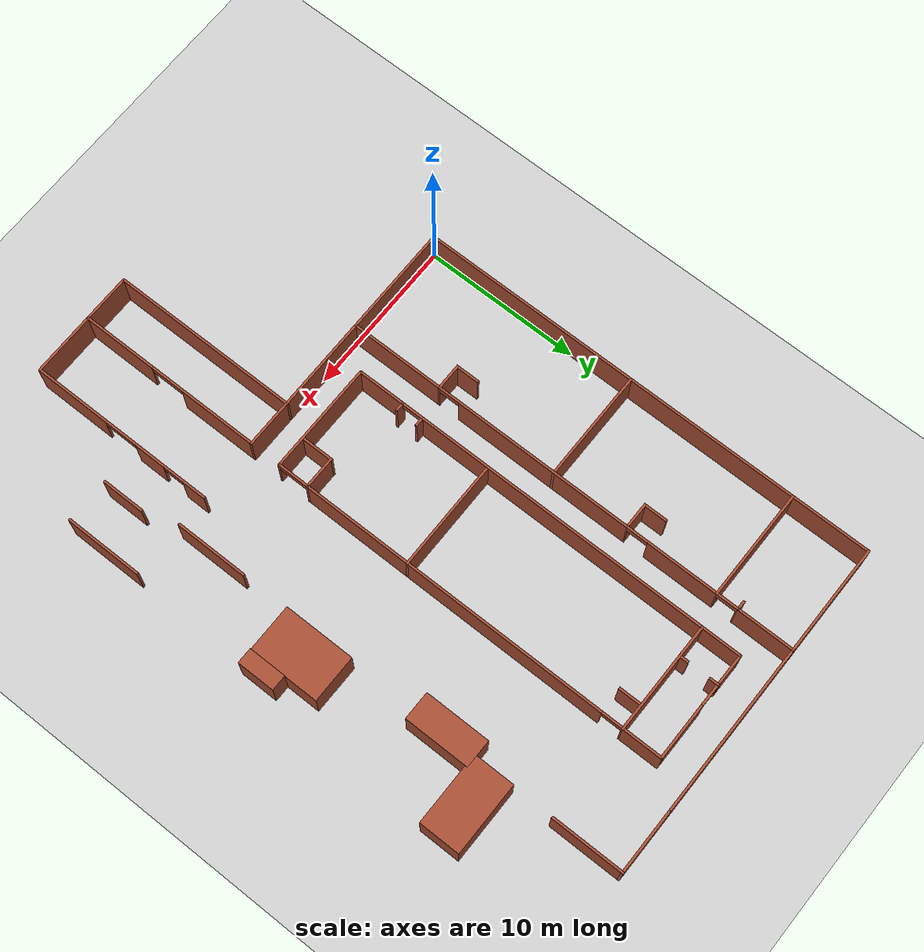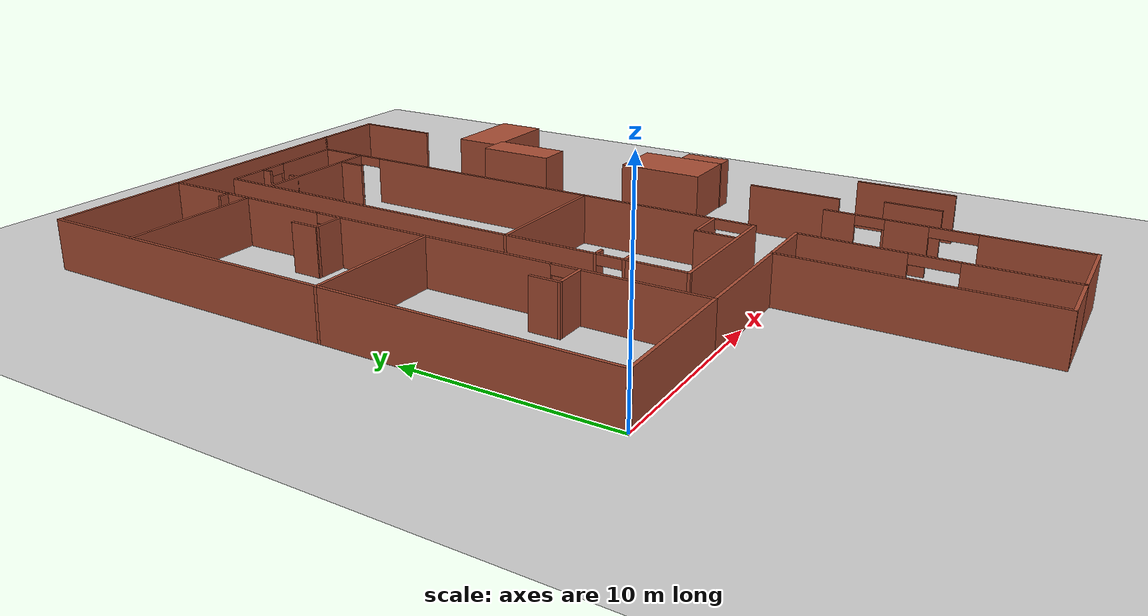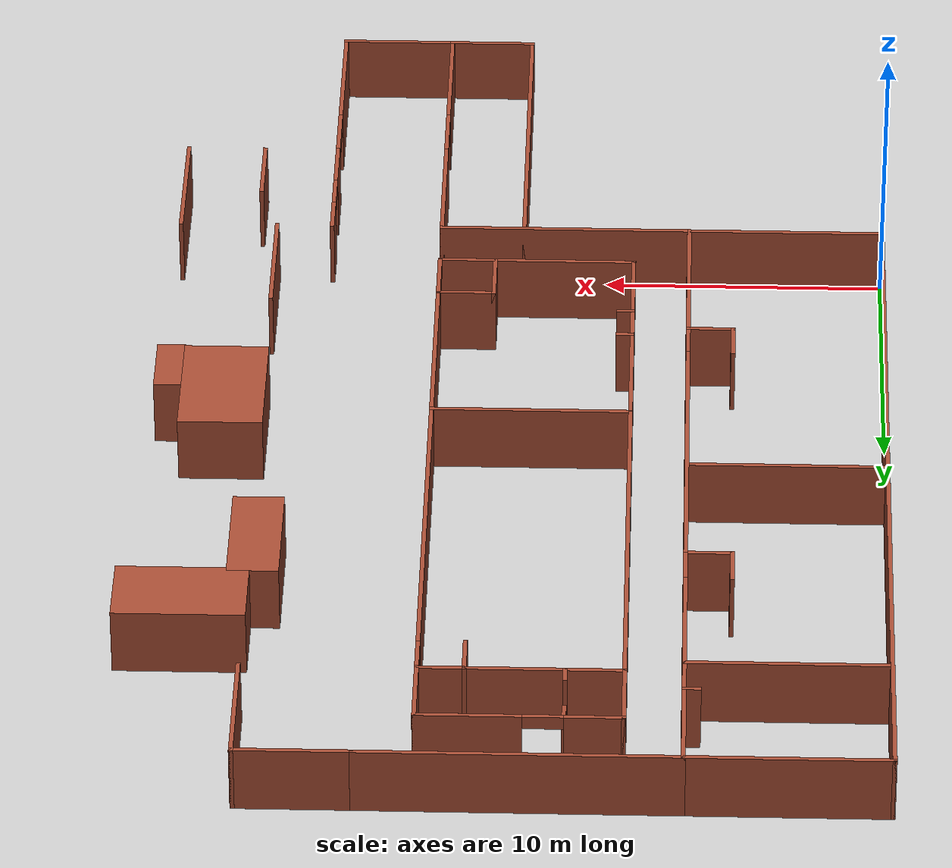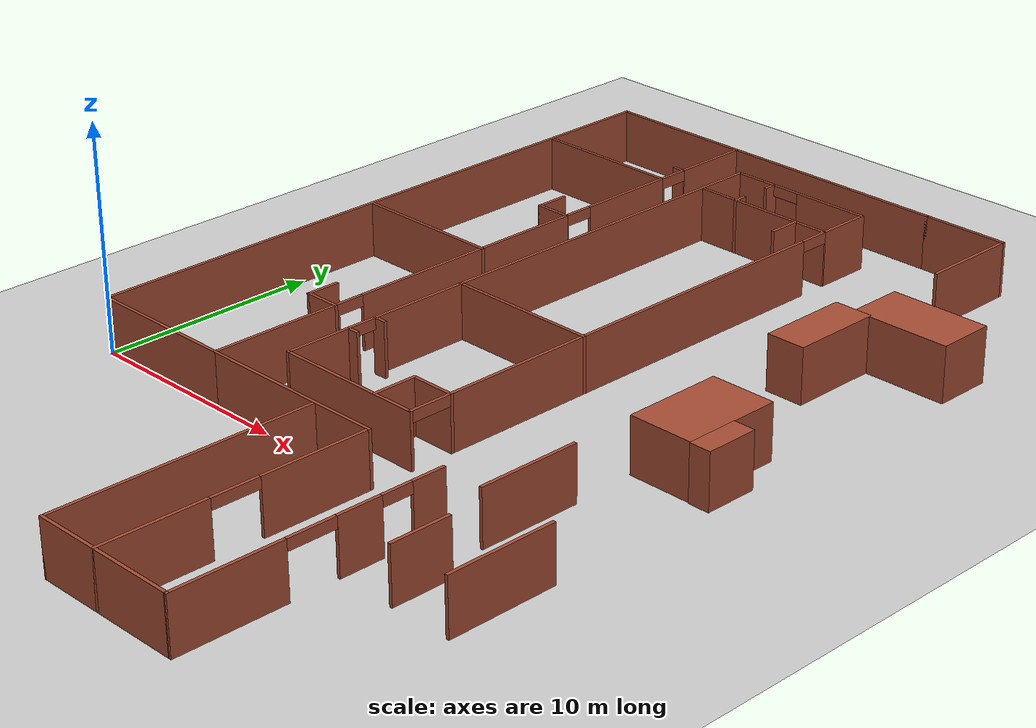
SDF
<sdf version="1.7">
 <world name="default">
  <model name="ground_plane">
   <static>1</static>
   <link name="link">
    <collision name="collision">
     <geometry><plane><normal>0 0 1</normal><size>100 100</size></plane></geometry>
     <surface><friction><ode><mu>100</mu><mu2>50</mu2></ode></friction></surface>
    </collision>
    <visual name="visual">
     <cast_shadows>0</cast_shadows>
     <geometry><plane><normal>0 0 1</normal><size>100 100</size></plane></geometry>
     <material>
      <script><uri>file://media/materials/scripts/gazebo.material</uri><name>Gazebo/Grey</name></script>
     </material>
    </visual>
   </link>
  </model>
  <model name="indoor_total_5">
   <pose>26.8 9 0 0 -0 0</pose>
   <link name="Wall_10">
    <collision name="Wall_10_Collision">
     <geometry><box><size>7.15 0.15 2.5</size></box></geometry>
     <pose>0 0 1.25 0 -0 0</pose>
    </collision>
    <visual name="Wall_10_Visual">
     <pose>0 0 1.25 0 -0 0</pose>
     <geometry><box><size>7.15 0.15 2.5</size></box></geometry>
     <material>
      <script><uri>file://media/materials/scripts/gazebo.material</uri><name>Gazebo/Bricks</name></script>
      <ambient>1 1 1 1</ambient>
     </material>
     <meta><layer>0</layer></meta>
    </visual>
    <pose>-23.3 21 0 0 -0 0</pose>
   </link>
   <link name="Wall_11">
    <pose>-19.8 6 0 0 -0 -1.5708</pose>
    <visual name="Wall_11_Visual_0">
     <pose>-13.2375 0 1.25 0 -0 0</pose>
     <geometry><box><size>3.675 0.15 2.5</size></box></geometry>
     <material>
      <script><uri>file://media/materials/scripts/gazebo.material</uri><name>Gazebo/Bricks</name></script>
      <ambient>1 1 1 1</ambient>
     </material>
     <meta><layer>0</layer></meta>
    </visual>
    <collision name="Wall_11_Collision_0">
     <geometry><box><size>3.675 0.15 2.5</size></box></geometry>
     <pose>-13.2375 0 1.25 0 -0 0</pose>
    </collision>
    <visual name="Wall_11_Visual_1">
     <pose>-7.7 0 1.25 0 -0 0</pose>
     <geometry><box><size>4.6 0.15 2.5</size></box></geometry>
     <material>
      <script><uri>file://media/materials/scripts/gazebo.material</uri><name>Gazebo/Bricks</name></script>
      <ambient>1 1 1 1</ambient>
     </material>
     <meta><layer>0</layer></meta>
    </visual>
    <collision name="Wall_11_Collision_1">
     <geometry><box><size>4.6 0.15 2.5</size></box></geometry>
     <pose>-7.7 0 1.25 0 -0 0</pose>
    </collision>
    <visual name="Wall_11_Visual_2">
     <pose>1.8 0 1.25 0 -0 0</pose>
     <geometry><box><size>11.6 0.15 2.5</size></box></geometry>
     <material>
      <script><uri>file://media/materials/scripts/gazebo.material</uri><name>Gazebo/Bricks</name></script>
      <ambient>1 1 1 1</ambient>
     </material>
     <meta><layer>0</layer></meta>
    </visual>
    <collision name="Wall_11_Collision_2">
     <geometry><box><size>11.6 0.15 2.5</size></box></geometry>
     <pose>1.8 0 1.25 0 -0 0</pose>
    </collision>
    <visual name="Wall_11_Visual_3">
     <pose>12.0375 0 1.25 0 -0 0</pose>
     <geometry><box><size>6.075 0.15 2.5</size></box></geometry>
     <material>
      <script><uri>file://media/materials/scripts/gazebo.material</uri><name>Gazebo/Bricks</name></script>
      <ambient>1 1 1 1</ambient>
     </material>
     <meta><layer>0</layer></meta>
    </visual>
    <collision name="Wall_11_Collision_3">
     <geometry><box><size>6.075 0.15 2.5</size></box></geometry>
     <pose>12.0375 0 1.25 0 -0 0</pose>
    </collision>
    <visual name="Wall_11_Visual_4">
     <pose>-10.7 0 2.25 0 -0 0</pose>
     <geometry><box><size>1.4 0.15 0.5</size></box></geometry>
     <material>
      <script><uri>file://media/materials/scripts/gazebo.material</uri><name>Gazebo/Bricks</name></script>
      <ambient>1 1 1 1</ambient>
     </material>
     <meta><layer>0</layer></meta>
    </visual>
    <collision name="Wall_11_Collision_4">
     <geometry><box><size>1.4 0.15 0.5</size></box></geometry>
     <pose>-10.7 0 2.25 0 -0 0</pose>
    </collision>
    <visual name="Wall_11_Visual_5">
     <pose>-4.7 0 2.25 0 -0 0</pose>
     <geometry><box><size>1.4 0.15 0.5</size></box></geometry>
     <material>
      <script><uri>file://media/materials/scripts/gazebo.material</uri><name>Gazebo/Bricks</name></script>
      <ambient>1 1 1 1</ambient>
     </material>
     <meta><layer>0</layer></meta>
    </visual>
    <collision name="Wall_11_Collision_5">
     <geometry><box><size>1.4 0.15 0.5</size></box></geometry>
     <pose>-4.7 0 2.25 0 -0 0</pose>
    </collision>
    <visual name="Wall_11_Visual_6">
     <pose>8.3 0 2.25 0 -0 0</pose>
     <geometry><box><size>1.4 0.15 0.5</size></box></geometry>
     <material>
      <script><uri>file://media/materials/scripts/gazebo.material</uri><name>Gazebo/Bricks</name></script>
      <ambient>1 1 1 1</ambient>
     </material>
     <meta><layer>0</layer></meta>
    </visual>
    <collision name="Wall_11_Collision_6">
     <geometry><box><size>1.4 0.15 0.5</size></box></geometry>
     <pose>8.3 0 2.25 0 -0 0</pose>
    </collision>
   </link>
   <link name="Wall_116">
    <collision name="Wall_116_Collision">
     <geometry><box><size>4.5 3 2.5</size></box></geometry>
     <pose>0 0 1.25 0 -0 0</pose>
    </collision>
    <visual name="Wall_116_Visual">
     <pose>0 0 1.25 0 -0 0</pose>
     <geometry><box><size>4.5 3 2.5</size></box></geometry>
     <material>
      <script><uri>file://media/materials/scripts/gazebo.material</uri><name>Gazebo/Bricks</name></script>
      <ambient>1 1 1 1</ambient>
     </material>
     <meta><layer>0</layer></meta>
    </visual>
    <pose>-3.39719 0.757854 0 0 -0 1.5708</pose>
   </link>
   <link name="Wall_118">
    <collision name="Wall_118_Collision">
     <geometry><box><size>2.397 1 2.5</size></box></geometry>
     <pose>0 0 1.25 0 -0 0</pose>
    </collision>
    <visual name="Wall_118_Visual">
     <pose>0 0 1.25 0 -0 0</pose>
     <geometry><box><size>2.397 1 2.5</size></box></geometry>
     <material>
      <script><uri>file://media/materials/scripts/gazebo.material</uri><name>Gazebo/Bricks</name></script>
      <ambient>1 1 1 1</ambient>
     </material>
     <meta><layer>0</layer></meta>
    </visual>
    <pose>-1.42475 -0.340014 0 0 -0 -1.5708</pose>
   </link>
   <link name="Wall_12">
    <collision name="Wall_12_Collision">
     <geometry><box><size>7.15 0.15 2.5</size></box></geometry>
     <pose>0 0 1.25 0 -0 0</pose>
    </collision>
    <visual name="Wall_12_Visual">
     <pose>0 0 1.25 0 -0 0</pose>
     <geometry><box><size>7.15 0.15 2.5</size></box></geometry>
     <material>
      <script><uri>file://media/materials/scripts/gazebo.material</uri><name>Gazebo/Bricks</name></script>
      <ambient>1 1 1 1</ambient>
     </material>
     <meta><layer>0</layer></meta>
    </visual>
    <pose>-23.3 -9 0 0 -0 3.14159</pose>
   </link>
   <link name="Wall_14">
    <collision name="Wall_14_Collision">
     <geometry><box><size>7.15 0.15 2.5</size></box></geometry>
     <pose>0 0 1.25 0 -0 0</pose>
    </collision>
    <visual name="Wall_14_Visual">
     <pose>0 0 1.25 0 -0 0</pose>
     <geometry><box><size>7.15 0.15 2.5</size></box></geometry>
     <material>
      <script><uri>file://media/materials/scripts/gazebo.material</uri><name>Gazebo/Bricks</name></script>
      <ambient>1 1 1 1</ambient>
     </material>
     <meta><layer>0</layer></meta>
    </visual>
    <pose>-23.3 5 0 0 -0 0</pose>
   </link>
   <link name="Wall_153">
    <collision name="Wall_153_Collision">
     <geometry><box><size>2.78298 0.15 2.5</size></box></geometry>
     <pose>0 0 1.25 0 -0 0</pose>
    </collision>
    <visual name="Wall_153_Visual">
     <pose>0 0 1.25 0 -0 0</pose>
     <geometry><box><size>2.78298 0.15 2.5</size></box></geometry>
     <material>
      <script><uri>file://media/materials/scripts/gazebo.material</uri><name>Gazebo/Bricks</name></script>
      <ambient>1 1 1 1</ambient>
     </material>
     <meta><layer>0</layer></meta>
    </visual>
    <pose>-4.12125 -12.4835 0 0 -0 -1.57061</pose>
   </link>
   <link name="Wall_156">
    <collision name="Wall_156_Collision">
     <geometry><box><size>4.95 0.15 2.5</size></box></geometry>
     <pose>0 0 1.25 0 -0 0</pose>
    </collision>
    <visual name="Wall_156_Visual">
     <pose>0 0 1.25 0 -0 0</pose>
     <geometry><box><size>4.95 0.15 2.5</size></box></geometry>
     <material>
      <script><uri>file://media/materials/scripts/gazebo.material</uri><name>Gazebo/Bricks</name></script>
      <ambient>1 1 1 1</ambient>
     </material>
     <meta><layer>0</layer></meta>
    </visual>
    <pose>-1.3 -11.4 0 0 -0 1.5708</pose>
   </link>
   <link name="Wall_16">
    <collision name="Wall_16_Collision">
     <geometry><box><size>7.15 0.15 2.5</size></box></geometry>
     <pose>0 0 1.25 0 -0 0</pose>
    </collision>
    <visual name="Wall_16_Visual">
     <pose>0 0 1.25 0 -0 0</pose>
     <geometry><box><size>7.15 0.15 2.5</size></box></geometry>
     <material>
      <script><uri>file://media/materials/scripts/gazebo.material</uri><name>Gazebo/Bricks</name></script>
      <ambient>1 1 1 1</ambient>
     </material>
     <meta><layer>0</layer></meta>
    </visual>
    <pose>-23.3 16 0 0 -0 0</pose>
   </link>
   <link name="Wall_18">
    <collision name="Wall_18_Collision">
     <geometry><box><size>0.65 0.15 2.5</size></box></geometry>
     <pose>0 0 1.25 0 -0 0</pose>
    </collision>
    <visual name="Wall_18_Visual">
     <pose>0 0 1.25 0 -0 0</pose>
     <geometry><box><size>0.65 0.15 2.5</size></box></geometry>
     <material>
      <script><uri>file://media/materials/scripts/gazebo.material</uri><name>Gazebo/Bricks</name></script>
      <ambient>1 1 1 1</ambient>
     </material>
     <meta><layer>0</layer></meta>
    </visual>
    <pose>-20.05 17.4 0 0 -0 0</pose>
   </link>
   <link name="Wall_182">
    <collision name="Wall_182_Collision">
     <geometry><box><size>4.15 0.15 2.5</size></box></geometry>
     <pose>0 0 1.25 0 -0 0</pose>
    </collision>
    <visual name="Wall_182_Visual">
     <pose>0 0 1.25 0 -0 0</pose>
     <geometry><box><size>4.15 0.15 2.5</size></box></geometry>
     <material>
      <script><uri>file://media/materials/scripts/gazebo.material</uri><name>Gazebo/Bricks</name></script>
      <ambient>1 1 1 1</ambient>
     </material>
     <meta><layer>0</layer></meta>
    </visual>
    <pose>-6.8 21 0 0 -0 0</pose>
   </link>
   <link name="Wall_184">
    <collision name="Wall_184_Collision">
     <geometry><box><size>4.15 0.15 2.5</size></box></geometry>
     <pose>0 0 1.25 0 -0 0</pose>
    </collision>
    <visual name="Wall_184_Visual">
     <pose>0 0 1.25 0 -0 0</pose>
     <geometry><box><size>4.15 0.15 2.5</size></box></geometry>
     <material>
      <script><uri>file://media/materials/scripts/gazebo.material</uri><name>Gazebo/Bricks</name></script>
      <ambient>1 1 1 1</ambient>
     </material>
     <meta><layer>0</layer></meta>
    </visual>
    <pose>-8.8 -21 0 0 -0 0</pose>
   </link>
   <link name="Wall_20">
    <collision name="Wall_20_Collision">
     <geometry><box><size>11.15 0.15 2.5</size></box></geometry>
     <pose>0 0 1.25 0 -0 0</pose>
    </collision>
    <visual name="Wall_20_Visual">
     <pose>0 0 1.25 0 -0 0</pose>
     <geometry><box><size>11.15 0.15 2.5</size></box></geometry>
     <material>
      <script><uri>file://media/materials/scripts/gazebo.material</uri><name>Gazebo/Bricks</name></script>
      <ambient>1 1 1 1</ambient>
     </material>
     <meta><layer>0</layer></meta>
    </visual>
    <pose>-14.3 21 0 0 -0 0</pose>
   </link>
   <link name="Wall_22">
    <pose>-14.3 19 0 0 -0 0</pose>
    <visual name="Wall_22_Visual_0">
     <pose>-2.5375 0 1.25 0 -0 0</pose>
     <geometry><box><size>2.075 0.15 2.5</size></box></geometry>
     <material>
      <script><uri>file://media/materials/scripts/gazebo.material</uri><name>Gazebo/Bricks</name></script>
      <ambient>1 1 1 1</ambient>
     </material>
     <meta><layer>0</layer></meta>
    </visual>
    <collision name="Wall_22_Collision_0">
     <geometry><box><size>2.075 0.15 2.5</size></box></geometry>
     <pose>-2.5375 0 1.25 0 -0 0</pose>
    </collision>
    <visual name="Wall_22_Visual_1">
     <pose>1.7375 0 1.25 0 -0 0</pose>
     <geometry><box><size>3.675 0.15 2.5</size></box></geometry>
     <material>
      <script><uri>file://media/materials/scripts/gazebo.material</uri><name>Gazebo/Bricks</name></script>
      <ambient>1 1 1 1</ambient>
     </material>
     <meta><layer>0</layer></meta>
    </visual>
    <collision name="Wall_22_Collision_1">
     <geometry><box><size>3.675 0.15 2.5</size></box></geometry>
     <pose>1.7375 0 1.25 0 -0 0</pose>
    </collision>
    <visual name="Wall_22_Visual_2">
     <pose>-0.8 0 2.25 0 -0 0</pose>
     <geometry><box><size>1.4 0.15 0.5</size></box></geometry>
     <material>
      <script><uri>file://media/materials/scripts/gazebo.material</uri><name>Gazebo/Bricks</name></script>
      <ambient>1 1 1 1</ambient>
     </material>
     <meta><layer>0</layer></meta>
    </visual>
    <collision name="Wall_22_Collision_2">
     <geometry><box><size>1.4 0.15 0.5</size></box></geometry>
     <pose>-0.8 0 2.25 0 -0 0</pose>
    </collision>
   </link>
   <link name="Wall_23">
    <pose>-10.8 6 0 0 -0 -1.5708</pose>
    <visual name="Wall_23_Visual_0">
     <pose>-11.7875 0 1.25 0 -0 0</pose>
     <geometry><box><size>2.575 0.15 2.5</size></box></geometry>
     <material>
      <script><uri>file://media/materials/scripts/gazebo.material</uri><name>Gazebo/Bricks</name></script>
      <ambient>1 1 1 1</ambient>
     </material>
     <meta><layer>0</layer></meta>
    </visual>
    <collision name="Wall_23_Collision_0">
     <geometry><box><size>2.575 0.15 2.5</size></box></geometry>
     <pose>-11.7875 0 1.25 0 -0 0</pose>
    </collision>
    <visual name="Wall_23_Visual_1">
     <pose>0.95 0 1.25 0 -0 0</pose>
     <geometry><box><size>20.1 0.15 2.5</size></box></geometry>
     <material>
      <script><uri>file://media/materials/scripts/gazebo.material</uri><name>Gazebo/Bricks</name></script>
      <ambient>1 1 1 1</ambient>
     </material>
     <meta><layer>0</layer></meta>
    </visual>
    <collision name="Wall_23_Collision_1">
     <geometry><box><size>20.1 0.15 2.5</size></box></geometry>
     <pose>0.95 0 1.25 0 -0 0</pose>
    </collision>
    <visual name="Wall_23_Visual_2">
     <pose>13.0375 0 1.25 0 -0 0</pose>
     <geometry><box><size>0.075 0.15 2.5</size></box></geometry>
     <material>
      <script><uri>file://media/materials/scripts/gazebo.material</uri><name>Gazebo/Bricks</name></script>
      <ambient>1 1 1 1</ambient>
     </material>
     <meta><layer>0</layer></meta>
    </visual>
    <collision name="Wall_23_Collision_2">
     <geometry><box><size>0.075 0.15 2.5</size></box></geometry>
     <pose>13.0375 0 1.25 0 -0 0</pose>
    </collision>
    <visual name="Wall_23_Visual_3">
     <pose>-9.8 0 2.25 0 -0 0</pose>
     <geometry><box><size>1.4 0.15 0.5</size></box></geometry>
     <material>
      <script><uri>file://media/materials/scripts/gazebo.material</uri><name>Gazebo/Bricks</name></script>
      <ambient>1 1 1 1</ambient>
     </material>
     <meta><layer>0</layer></meta>
    </visual>
    <collision name="Wall_23_Collision_3">
     <geometry><box><size>1.4 0.15 0.5</size></box></geometry>
     <pose>-9.8 0 2.25 0 -0 0</pose>
    </collision>
    <visual name="Wall_23_Visual_4">
     <pose>12 0 2.25 0 -0 0</pose>
     <geometry><box><size>2 0.15 0.5</size></box></geometry>
     <material>
      <script><uri>file://media/materials/scripts/gazebo.material</uri><name>Gazebo/Bricks</name></script>
      <ambient>1 1 1 1</ambient>
     </material>
     <meta><layer>0</layer></meta>
    </visual>
    <collision name="Wall_23_Collision_4">
     <geometry><box><size>2 0.15 0.5</size></box></geometry>
     <pose>12 0 2.25 0 -0 0</pose>
    </collision>
   </link>
   <link name="Wall_24">
    <collision name="Wall_24_Collision">
     <geometry><box><size>7.15 0.15 2.5</size></box></geometry>
     <pose>0 0 1.25 0 -0 0</pose>
    </collision>
    <visual name="Wall_24_Visual">
     <pose>0 0 1.25 0 -0 0</pose>
     <geometry><box><size>7.15 0.15 2.5</size></box></geometry>
     <material>
      <script><uri>file://media/materials/scripts/gazebo.material</uri><name>Gazebo/Bricks</name></script>
      <ambient>1 1 1 1</ambient>
     </material>
     <meta><layer>0</layer></meta>
    </visual>
    <pose>-14.3 -7 0 0 -0 3.14159</pose>
   </link>
   <link name="Wall_25">
    <pose>-17.8 6 0 0 -0 1.5708</pose>
    <visual name="Wall_25_Visual_0">
     <pose>-11.5375 0 1.25 0 -0 0</pose>
     <geometry><box><size>3.075 0.15 2.5</size></box></geometry>
     <material>
      <script><uri>file://media/materials/scripts/gazebo.material</uri><name>Gazebo/Bricks</name></script>
      <ambient>1 1 1 1</ambient>
     </material>
     <meta><layer>0</layer></meta>
    </visual>
    <collision name="Wall_25_Collision_0">
     <geometry><box><size>3.075 0.15 2.5</size></box></geometry>
     <pose>-11.5375 0 1.25 0 -0 0</pose>
    </collision>
    <visual name="Wall_25_Visual_1">
     <pose>2.2375 0 1.25 0 -0 0</pose>
     <geometry><box><size>21.675 0.15 2.5</size></box></geometry>
     <material>
      <script><uri>file://media/materials/scripts/gazebo.material</uri><name>Gazebo/Bricks</name></script>
      <ambient>1 1 1 1</ambient>
     </material>
     <meta><layer>0</layer></meta>
    </visual>
    <collision name="Wall_25_Collision_1">
     <geometry><box><size>21.675 0.15 2.5</size></box></geometry>
     <pose>2.2375 0 1.25 0 -0 0</pose>
    </collision>
    <visual name="Wall_25_Visual_2">
     <pose>-9.3 0 2.25 0 -0 0</pose>
     <geometry><box><size>1.4 0.15 0.5</size></box></geometry>
     <material>
      <script><uri>file://media/materials/scripts/gazebo.material</uri><name>Gazebo/Bricks</name></script>
      <ambient>1 1 1 1</ambient>
     </material>
     <meta><layer>0</layer></meta>
    </visual>
    <collision name="Wall_25_Collision_2">
     <geometry><box><size>1.4 0.15 0.5</size></box></geometry>
     <pose>-9.3 0 2.25 0 -0 0</pose>
    </collision>
   </link>
   <link name="Wall_27">
    <collision name="Wall_27_Collision">
     <geometry><box><size>9.15 0.15 2.5</size></box></geometry>
     <pose>0 0 1.25 0 -0 0</pose>
    </collision>
    <visual name="Wall_27_Visual">
     <pose>0 0 1.25 0 -0 0</pose>
     <geometry><box><size>9.15 0.15 2.5</size></box></geometry>
     <material>
      <script><uri>file://media/materials/scripts/gazebo.material</uri><name>Gazebo/Bricks</name></script>
      <ambient>1 1 1 1</ambient>
     </material>
     <meta><layer>0</layer></meta>
    </visual>
    <pose>-15.3 -9 0 0 -0 0</pose>
   </link>
   <link name="Wall_29">
    <collision name="Wall_29_Collision">
     <geometry><box><size>12.15 0.15 2.5</size></box></geometry>
     <pose>0 0 1.25 0 -0 0</pose>
    </collision>
    <visual name="Wall_29_Visual">
     <pose>0 0 1.25 0 -0 0</pose>
     <geometry><box><size>12.15 0.15 2.5</size></box></geometry>
     <material>
      <script><uri>file://media/materials/scripts/gazebo.material</uri><name>Gazebo/Bricks</name></script>
      <ambient>1 1 1 1</ambient>
     </material>
     <meta><layer>0</layer></meta>
    </visual>
    <pose>-13.8 -15 0 0 -0 -1.5708</pose>
   </link>
   <link name="Wall_30">
    <collision name="Wall_30_Collision">
     <geometry><box><size>3.15 0.15 2.5</size></box></geometry>
     <pose>0 0 1.25 0 -0 0</pose>
    </collision>
    <visual name="Wall_30_Visual">
     <pose>0 0 1.25 0 -0 0</pose>
     <geometry><box><size>3.15 0.15 2.5</size></box></geometry>
     <material>
      <script><uri>file://media/materials/scripts/gazebo.material</uri><name>Gazebo/Bricks</name></script>
      <ambient>1 1 1 1</ambient>
     </material>
     <meta><layer>0</layer></meta>
    </visual>
    <pose>-12.3 -21 0 0 -0 0</pose>
   </link>
   <link name="Wall_31">
    <pose>-10.8 -15 0 0 -0 1.5708</pose>
    <visual name="Wall_31_Visual_0">
     <pose>-3.6375 0 1.25 0 -0 0</pose>
     <geometry><box><size>4.875 0.15 2.5</size></box></geometry>
     <material>
      <script><uri>file://media/materials/scripts/gazebo.material</uri><name>Gazebo/Bricks</name></script>
      <ambient>1 1 1 1</ambient>
     </material>
     <meta><layer>0</layer></meta>
    </visual>
    <collision name="Wall_31_Collision_0">
     <geometry><box><size>4.875 0.15 2.5</size></box></geometry>
     <pose>-3.6375 0 1.25 0 -0 0</pose>
    </collision>
    <visual name="Wall_31_Visual_1">
     <pose>3.5375 0 1.25 0 -0 0</pose>
     <geometry><box><size>5.075 0.15 2.5</size></box></geometry>
     <material>
      <script><uri>file://media/materials/scripts/gazebo.material</uri><name>Gazebo/Bricks</name></script>
      <ambient>1 1 1 1</ambient>
     </material>
     <meta><layer>0</layer></meta>
    </visual>
    <collision name="Wall_31_Collision_1">
     <geometry><box><size>5.075 0.15 2.5</size></box></geometry>
     <pose>3.5375 0 1.25 0 -0 0</pose>
    </collision>
    <visual name="Wall_31_Visual_2">
     <pose>-0.1 0 2.25 0 -0 0</pose>
     <geometry><box><size>2.2 0.15 0.5</size></box></geometry>
     <material>
      <script><uri>file://media/materials/scripts/gazebo.material</uri><name>Gazebo/Bricks</name></script>
      <ambient>1 1 1 1</ambient>
     </material>
     <meta><layer>0</layer></meta>
    </visual>
    <collision name="Wall_31_Collision_2">
     <geometry><box><size>2.2 0.15 0.5</size></box></geometry>
     <pose>-0.1 0 2.25 0 -0 0</pose>
    </collision>
   </link>
   <link name="Wall_33">
    <collision name="Wall_33_Collision">
     <geometry><box><size>1.75 0.15 2.5</size></box></geometry>
     <pose>0 0 1.25 0 -0 0</pose>
    </collision>
    <visual name="Wall_33_Visual">
     <pose>0 0 1.25 0 -0 0</pose>
     <geometry><box><size>1.75 0.15 2.5</size></box></geometry>
     <material>
      <script><uri>file://media/materials/scripts/gazebo.material</uri><name>Gazebo/Bricks</name></script>
      <ambient>1 1 1 1</ambient>
     </material>
     <meta><layer>0</layer></meta>
    </visual>
    <pose>-20.6 10 0 0 -0 3.14159</pose>
   </link>
   <link name="Wall_34">
    <collision name="Wall_34_Collision">
     <geometry><box><size>1.55 0.15 2.5</size></box></geometry>
     <pose>0 0 1.25 0 -0 0</pose>
    </collision>
    <visual name="Wall_34_Visual">
     <pose>0 0 1.25 0 -0 0</pose>
     <geometry><box><size>1.55 0.15 2.5</size></box></geometry>
     <material>
      <script><uri>file://media/materials/scripts/gazebo.material</uri><name>Gazebo/Bricks</name></script>
      <ambient>1 1 1 1</ambient>
     </material>
     <meta><layer>0</layer></meta>
    </visual>
    <pose>-21.4 10.7 0 0 -0 1.5708</pose>
   </link>
   <link name="Wall_36">
    <collision name="Wall_36_Collision">
     <geometry><box><size>1.75 0.15 2.5</size></box></geometry>
     <pose>0 0 1.25 0 -0 0</pose>
    </collision>
    <visual name="Wall_36_Visual">
     <pose>0 0 1.25 0 -0 0</pose>
     <geometry><box><size>1.75 0.15 2.5</size></box></geometry>
     <material>
      <script><uri>file://media/materials/scripts/gazebo.material</uri><name>Gazebo/Bricks</name></script>
      <ambient>1 1 1 1</ambient>
     </material>
     <meta><layer>0</layer></meta>
    </visual>
    <pose>-20.6 -3 0 0 -0 3.14159</pose>
   </link>
   <link name="Wall_37">
    <collision name="Wall_37_Collision">
     <geometry><box><size>1.55 0.15 2.5</size></box></geometry>
     <pose>0 0 1.25 0 -0 0</pose>
    </collision>
    <visual name="Wall_37_Visual">
     <pose>0 0 1.25 0 -0 0</pose>
     <geometry><box><size>1.55 0.15 2.5</size></box></geometry>
     <material>
      <script><uri>file://media/materials/scripts/gazebo.material</uri><name>Gazebo/Bricks</name></script>
      <ambient>1 1 1 1</ambient>
     </material>
     <meta><layer>0</layer></meta>
    </visual>
    <pose>-21.4 -2.3 0 0 -0 1.5708</pose>
   </link>
   <link name="Wall_39">
    <collision name="Wall_39_Collision">
     <geometry><box><size>7.15 0.15 2.5</size></box></geometry>
     <pose>0 0 1.25 0 -0 0</pose>
    </collision>
    <visual name="Wall_39_Visual">
     <pose>0 0 1.25 0 -0 0</pose>
     <geometry><box><size>7.15 0.15 2.5</size></box></geometry>
     <material>
      <script><uri>file://media/materials/scripts/gazebo.material</uri><name>Gazebo/Bricks</name></script>
      <ambient>1 1 1 1</ambient>
     </material>
     <meta><layer>0</layer></meta>
    </visual>
    <pose>-14.3 16.5 0 0 -0 0</pose>
   </link>
   <link name="Wall_41">
    <collision name="Wall_41_Collision">
     <geometry><box><size>7.15 0.15 2.5</size></box></geometry>
     <pose>0 0 1.25 0 -0 0</pose>
    </collision>
    <visual name="Wall_41_Visual">
     <pose>0 0 1.25 0 -0 0</pose>
     <geometry><box><size>7.15 0.15 2.5</size></box></geometry>
     <material>
      <script><uri>file://media/materials/scripts/gazebo.material</uri><name>Gazebo/Bricks</name></script>
      <ambient>1 1 1 1</ambient>
     </material>
     <meta><layer>0</layer></meta>
    </visual>
    <pose>-14.3 2 0 0 -0 0</pose>
   </link>
   <link name="Wall_43">
    <collision name="Wall_43_Collision">
     <geometry><box><size>0.65 0.15 2.5</size></box></geometry>
     <pose>0 0 1.25 0 -0 0</pose>
    </collision>
    <visual name="Wall_43_Visual">
     <pose>0 0 1.25 0 -0 0</pose>
     <geometry><box><size>0.65 0.15 2.5</size></box></geometry>
     <material>
      <script><uri>file://media/materials/scripts/gazebo.material</uri><name>Gazebo/Bricks</name></script>
      <ambient>1 1 1 1</ambient>
     </material>
     <meta><layer>0</layer></meta>
    </visual>
    <pose>-15.8 18.75 0 0 -0 -1.5708</pose>
   </link>
   <link name="Wall_45">
    <collision name="Wall_45_Collision">
     <geometry><box><size>0.65 0.15 2.5</size></box></geometry>
     <pose>0 0 1.25 0 -0 0</pose>
    </collision>
    <visual name="Wall_45_Visual">
     <pose>0 0 1.25 0 -0 0</pose>
     <geometry><box><size>0.65 0.15 2.5</size></box></geometry>
     <material>
      <script><uri>file://media/materials/scripts/gazebo.material</uri><name>Gazebo/Bricks</name></script>
      <ambient>1 1 1 1</ambient>
     </material>
     <meta><layer>0</layer></meta>
    </visual>
    <pose>-15.8 16.75 0 0 -0 1.5708</pose>
   </link>
   <link name="Wall_47">
    <collision name="Wall_47_Collision">
     <geometry><box><size>1.55 0.15 2.5</size></box></geometry>
     <pose>0 0 1.25 0 -0 0</pose>
    </collision>
    <visual name="Wall_47_Visual">
     <pose>0 0 1.25 0 -0 0</pose>
     <geometry><box><size>1.55 0.15 2.5</size></box></geometry>
     <material>
      <script><uri>file://media/materials/scripts/gazebo.material</uri><name>Gazebo/Bricks</name></script>
      <ambient>1 1 1 1</ambient>
     </material>
     <meta><layer>0</layer></meta>
    </visual>
    <pose>-12.4 15.8 0 0 -0 -1.5708</pose>
   </link>
   <link name="Wall_49">
    <collision name="Wall_49_Collision">
     <geometry><box><size>0.65 0.15 2.5</size></box></geometry>
     <pose>0 0 1.25 0 -0 0</pose>
    </collision>
    <visual name="Wall_49_Visual">
     <pose>0 0 1.25 0 -0 0</pose>
     <geometry><box><size>0.65 0.15 2.5</size></box></geometry>
     <material>
      <script><uri>file://media/materials/scripts/gazebo.material</uri><name>Gazebo/Bricks</name></script>
      <ambient>1 1 1 1</ambient>
     </material>
     <meta><layer>0</layer></meta>
    </visual>
    <pose>-17.55 -2.6 0 0 -0 0</pose>
   </link>
   <link name="Wall_51">
    <collision name="Wall_51_Collision">
     <geometry><box><size>0.65 0.15 2.5</size></box></geometry>
     <pose>0 0 1.25 0 -0 0</pose>
    </collision>
    <visual name="Wall_51_Visual">
     <pose>0 0 1.25 0 -0 0</pose>
     <geometry><box><size>0.65 0.15 2.5</size></box></geometry>
     <material>
      <script><uri>file://media/materials/scripts/gazebo.material</uri><name>Gazebo/Bricks</name></script>
      <ambient>1 1 1 1</ambient>
     </material>
     <meta><layer>0</layer></meta>
    </visual>
    <pose>-17.55 -4 0 0 -0 0</pose>
   </link>
   <link name="Wall_53">
    <collision name="Wall_53_Collision">
     <geometry><box><size>2.15 0.15 2.5</size></box></geometry>
     <pose>0 0 1.25 0 -0 0</pose>
    </collision>
    <visual name="Wall_53_Visual">
     <pose>0 0 1.25 0 -0 0</pose>
     <geometry><box><size>2.15 0.15 2.5</size></box></geometry>
     <material>
      <script><uri>file://media/materials/scripts/gazebo.material</uri><name>Gazebo/Bricks</name></script>
      <ambient>1 1 1 1</ambient>
     </material>
     <meta><layer>0</layer></meta>
    </visual>
    <pose>-12.8 -6 0 0 -0 1.5708</pose>
   </link>
   <link name="Wall_54">
    <collision name="Wall_54_Collision">
     <geometry><box><size>2.15 0.15 2.5</size></box></geometry>
     <pose>0 0 1.25 0 -0 0</pose>
    </collision>
    <visual name="Wall_54_Visual">
     <pose>0 0 1.25 0 -0 0</pose>
     <geometry><box><size>2.15 0.15 2.5</size></box></geometry>
     <material>
      <script><uri>file://media/materials/scripts/gazebo.material</uri><name>Gazebo/Bricks</name></script>
      <ambient>1 1 1 1</ambient>
     </material>
     <meta><layer>0</layer></meta>
    </visual>
    <pose>-11.8 -5 0 0 -0 0</pose>
   </link>
   <link name="Wall_59">
    <collision name="Wall_59_Collision">
     <geometry><box><size>4.65 0.15 2.5</size></box></geometry>
     <pose>0 0 1.25 0 -0 0</pose>
    </collision>
    <visual name="Wall_59_Visual">
     <pose>0 0 1.25 0 -0 0</pose>
     <geometry><box><size>4.65 0.15 2.5</size></box></geometry>
     <material>
      <script><uri>file://media/materials/scripts/gazebo.material</uri><name>Gazebo/Bricks</name></script>
      <ambient>1 1 1 1</ambient>
     </material>
     <meta><layer>0</layer></meta>
    </visual>
    <pose>-4.8 18.75 0 0 -0 1.5708</pose>
   </link>
   <link name="Wall_67">
    <pose>-6.8 -15 0 0 -0 1.5708</pose>
    <visual name="Wall_67_Visual_0">
     <pose>-3.5875 0 1.25 0 -0 0</pose>
     <geometry><box><size>4.975 0.15 2.5</size></box></geometry>
     <material>
      <script><uri>file://media/materials/scripts/gazebo.material</uri><name>Gazebo/Bricks</name></script>
      <ambient>1 1 1 1</ambient>
     </material>
     <meta><layer>0</layer></meta>
    </visual>
    <collision name="Wall_67_Collision_0">
     <geometry><box><size>4.975 0.15 2.5</size></box></geometry>
     <pose>-3.5875 0 1.25 0 -0 0</pose>
    </collision>
    <visual name="Wall_67_Visual_1">
     <pose>2.11328 0 1.25 0 -0 0</pose>
     <geometry><box><size>2.02656 0.15 2.5</size></box></geometry>
     <material>
      <script><uri>file://media/materials/scripts/gazebo.material</uri><name>Gazebo/Bricks</name></script>
      <ambient>1 1 1 1</ambient>
     </material>
     <meta><layer>0</layer></meta>
    </visual>
    <collision name="Wall_67_Collision_1">
     <geometry><box><size>2.02656 0.15 2.5</size></box></geometry>
     <pose>2.11328 0 1.25 0 -0 0</pose>
    </collision>
    <visual name="Wall_67_Visual_2">
     <pose>5.30078 0 1.25 0 -0 0</pose>
     <geometry><box><size>1.54845 0.15 2.5</size></box></geometry>
     <material>
      <script><uri>file://media/materials/scripts/gazebo.material</uri><name>Gazebo/Bricks</name></script>
      <ambient>1 1 1 1</ambient>
     </material>
     <meta><layer>0</layer></meta>
    </visual>
    <collision name="Wall_67_Collision_2">
     <geometry><box><size>1.54845 0.15 2.5</size></box></geometry>
     <pose>5.30078 0 1.25 0 -0 0</pose>
    </collision>
    <visual name="Wall_67_Visual_3">
     <pose>-0 0 2.25 0 -0 0</pose>
     <geometry><box><size>2.2 0.15 0.5</size></box></geometry>
     <material>
      <script><uri>file://media/materials/scripts/gazebo.material</uri><name>Gazebo/Bricks</name></script>
      <ambient>1 1 1 1</ambient>
     </material>
     <meta><layer>0</layer></meta>
    </visual>
    <collision name="Wall_67_Collision_3">
     <geometry><box><size>2.2 0.15 0.5</size></box></geometry>
     <pose>-0 0 2.25 0 -0 0</pose>
    </collision>
    <visual name="Wall_67_Visual_4">
     <pose>3.82655 0 2.25 0 -0 0</pose>
     <geometry><box><size>1.4 0.15 0.5</size></box></geometry>
     <material>
      <script><uri>file://media/materials/scripts/gazebo.material</uri><name>Gazebo/Bricks</name></script>
      <ambient>1 1 1 1</ambient>
     </material>
     <meta><layer>0</layer></meta>
    </visual>
    <collision name="Wall_67_Collision_4">
     <geometry><box><size>1.4 0.15 0.5</size></box></geometry>
     <pose>3.82655 0 2.25 0 -0 0</pose>
    </collision>
   </link>
   <link name="Wall_75">
    <collision name="Wall_75_Collision">
     <geometry><box><size>4.65 0.15 2.5</size></box></geometry>
     <pose>0 0 1.25 0 -0 0</pose>
    </collision>
    <visual name="Wall_75_Visual">
     <pose>0 0 1.25 0 -0 0</pose>
     <geometry><box><size>4.65 0.15 2.5</size></box></geometry>
     <material>
      <script><uri>file://media/materials/scripts/gazebo.material</uri><name>Gazebo/Bricks</name></script>
      <ambient>1 1 1 1</ambient>
     </material>
     <meta><layer>0</layer></meta>
    </visual>
    <pose>-4.8 -6.75 0 0 -0 1.5708</pose>
   </link>
   <link name="Wall_8">
    <collision name="Wall_8_Collision">
     <geometry><box><size>30.15 0.15 2.5</size></box></geometry>
     <pose>0 0 1.25 0 -0 0</pose>
    </collision>
    <visual name="Wall_8_Visual">
     <pose>0 0 1.25 0 -0 0</pose>
     <geometry><box><size>30.15 0.15 2.5</size></box></geometry>
     <material>
      <script><uri>file://media/materials/scripts/gazebo.material</uri><name>Gazebo/Bricks</name></script>
      <ambient>1 1 1 1</ambient>
     </material>
     <meta><layer>0</layer></meta>
    </visual>
    <pose>-26.8 6 0 0 -0 1.5708</pose>
   </link>
   <link name="Wall_86">
    <collision name="Wall_86_Collision">
     <geometry><box><size>4.15 1.8 2.5</size></box></geometry>
     <pose>0 0 1.25 0 -0 0</pose>
    </collision>
    <visual name="Wall_86_Visual">
     <pose>0 0 1.25 0 -0 0</pose>
     <geometry><box><size>4.15 1.8 2.5</size></box></geometry>
     <material>
      <script><uri>file://media/materials/scripts/gazebo.material</uri><name>Gazebo/Bricks</name></script>
      <ambient>1 1 1 1</ambient>
     </material>
     <meta><layer>0</layer></meta>
    </visual>
    <pose>-5.002 9.34389 0 0 -0 -1.5708</pose>
   </link>
   <link name="Wall_88">
    <collision name="Wall_88_Collision">
     <geometry><box><size>4.6 2.6 2.5</size></box></geometry>
     <pose>0 0 1.25 0 -0 0</pose>
    </collision>
    <visual name="Wall_88_Visual">
     <pose>0 0 1.25 0 -0 0</pose>
     <geometry><box><size>4.6 2.6 2.5</size></box></geometry>
     <material>
      <script><uri>file://media/materials/scripts/gazebo.material</uri><name>Gazebo/Bricks</name></script>
      <ambient>1 1 1 1</ambient>
     </material>
     <meta><layer>0</layer></meta>
    </visual>
    <pose>-2.59713 12.5708 0 0 -0 0</pose>
   </link>
   <static>1</static>
  </model>
 </world>
</sdf>
